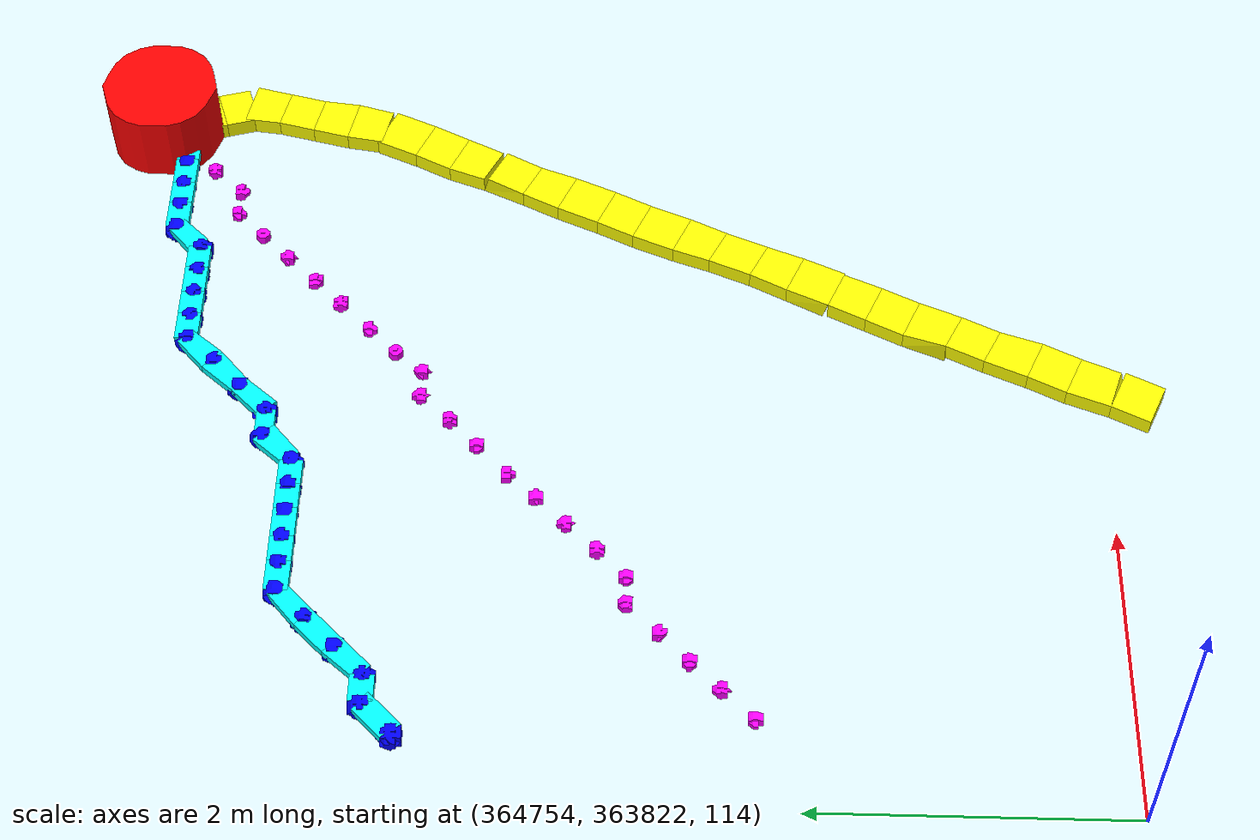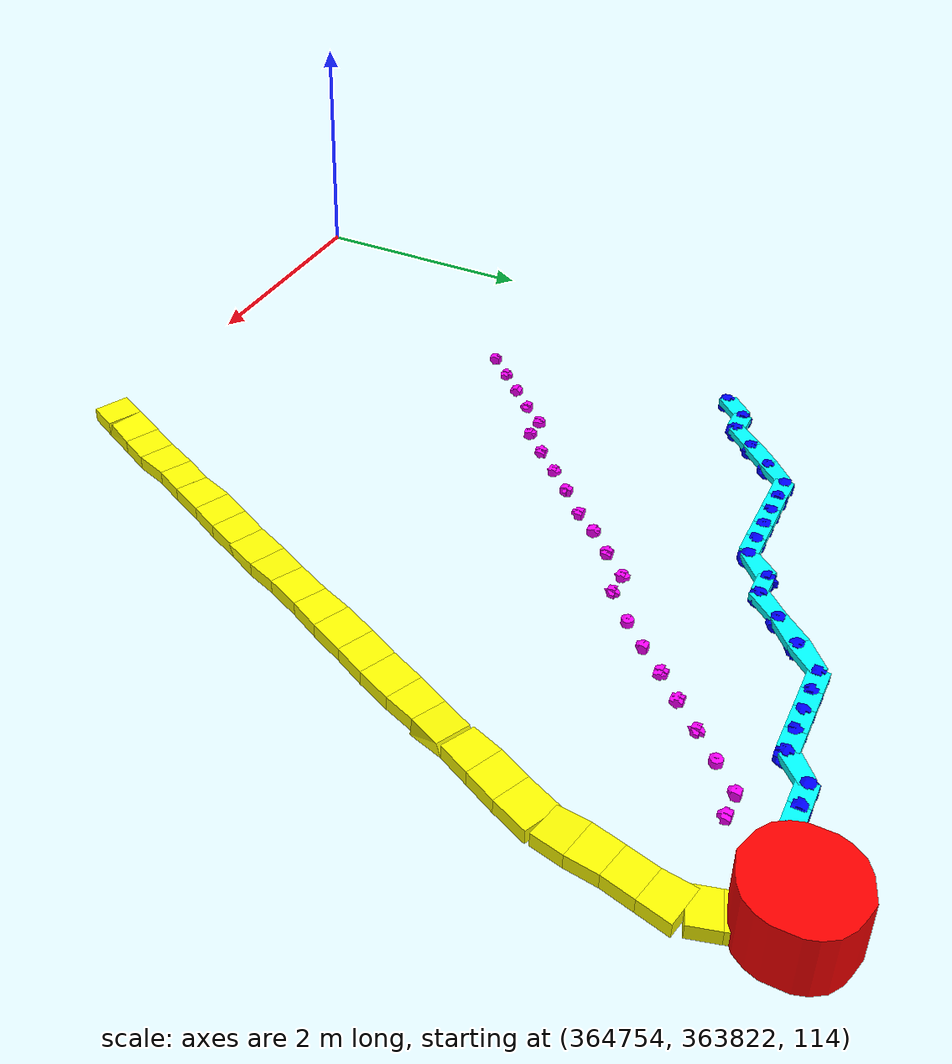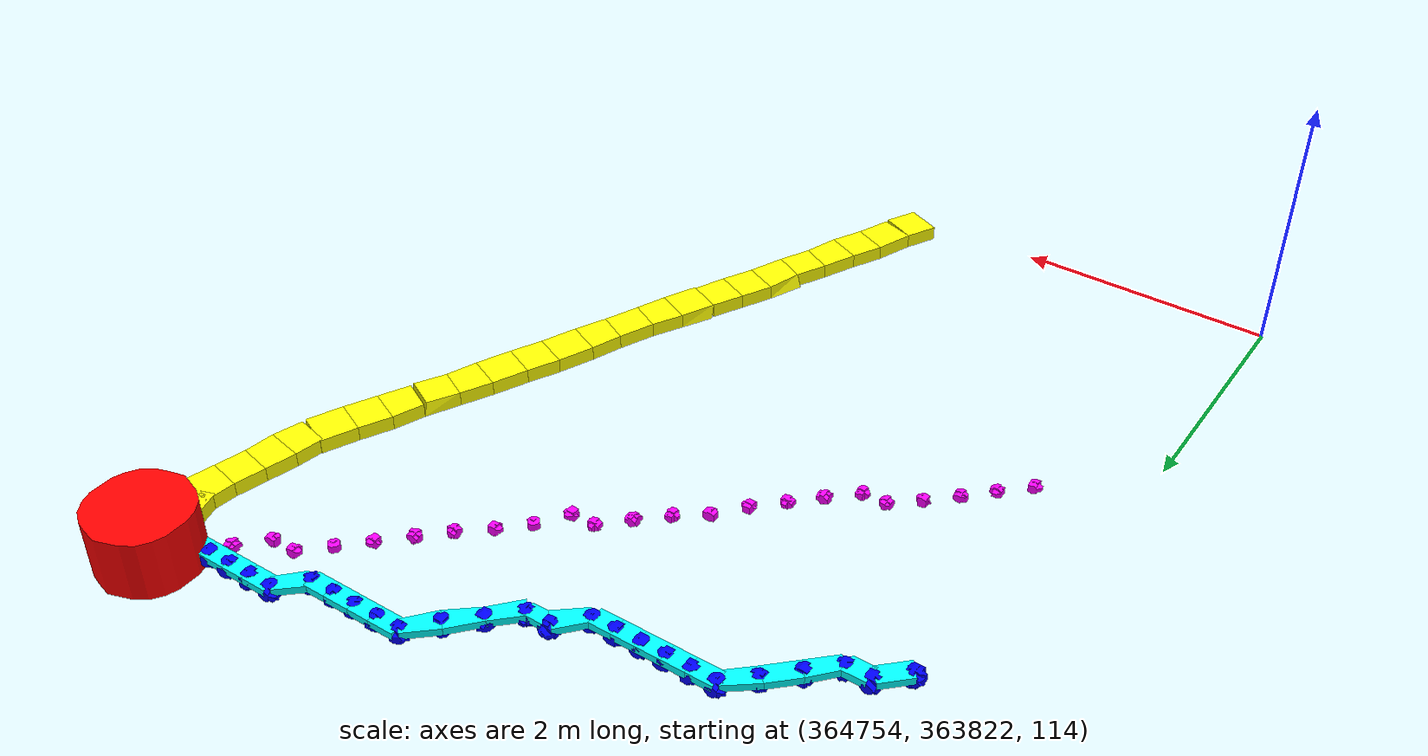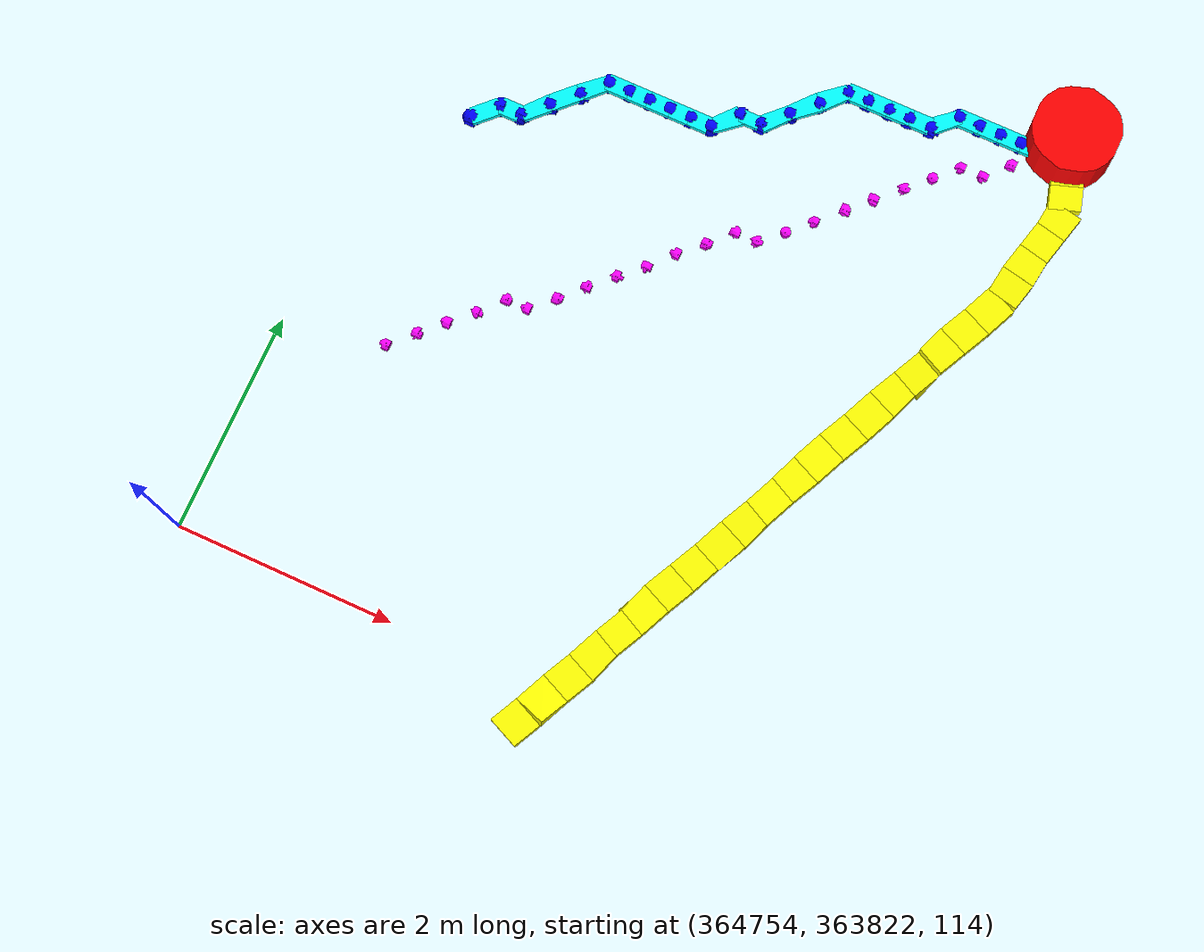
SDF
<sdf version="1.5">
 <world name="default">
  <include><uri>model://sun</uri></include>
  <model name="goal_marker">
   <static>true</static>
   <pose>364759.64 363828.44 113.82 0 0 0</pose>
   <link name="link">
    <visual name="visual">
     <geometry><cylinder><radius>0.4</radius><length>0.5</length></cylinder></geometry>
     <material><ambient>1 0 0 1</ambient><diffuse>1 0 0 1</diffuse><emissive>1 0 0 1</emissive></material>
    </visual>
   </link>
  </model>
  <model name="road_segment_407">
   <static>true</static>
   <pose>364757.3 363821.69200000004 113.65 0 -0.0 1.144168833717856</pose>
   <link name="link">
    <collision name="collision">
     <geometry><box><size>0.2899931033868107 0.3 0.12</size></box></geometry>
     <surface><friction><ode><mu>0.2</mu><mu2>0.2</mu2></ode></friction></surface>
    </collision>
    <visual name="visual">
     <geometry><box><size>0.2899931033868107 0.3 0.12</size></box></geometry>
     <material><ambient>1 1 0 1</ambient><diffuse>1 1 0 1</diffuse><emissive>1 1 0 1</emissive></material>
    </visual>
   </link>
  </model>
  <model name="road_segment_408">
   <static>true</static>
   <pose>364757.42000000004 363821.956 113.64 0 0.06885812168099147 1.1441688334520674</pose>
   <link name="link">
    <collision name="collision">
     <geometry><box><size>0.2906819567760433 0.3 0.12</size></box></geometry>
     <surface><friction><ode><mu>0.2</mu><mu2>0.2</mu2></ode></friction></surface>
    </collision>
    <visual name="visual">
     <geometry><box><size>0.2906819567760433 0.3 0.12</size></box></geometry>
     <material><ambient>1 1 0 1</ambient><diffuse>1 1 0 1</diffuse><emissive>1 1 0 1</emissive></material>
    </visual>
   </link>
  </model>
  <model name="road_segment_409">
   <static>true</static>
   <pose>364757.54000000004 363822.22 113.63000000000001 0 4.9004112681420174e-14 1.144168833717856</pose>
   <link name="link">
    <collision name="collision">
     <geometry><box><size>0.2899931033868107 0.3 0.12</size></box></geometry>
     <surface><friction><ode><mu>inf</mu><mu2>inf</mu2></ode></friction></surface>
    </collision>
    <visual name="visual">
     <geometry><box><size>0.2899931033868107 0.3 0.12</size></box></geometry>
     <material><ambient>1 1 0 1</ambient><diffuse>1 1 0 1</diffuse><emissive>1 1 0 1</emissive></material>
    </visual>
   </link>
  </model>
  <model name="road_segment_410">
   <static>true</static>
   <pose>364757.66000000003 363822.484 113.63 0 -0.0 1.144168833634797</pose>
   <link name="link">
    <collision name="collision">
     <geometry><box><size>0.2899931033338204 0.3 0.12</size></box></geometry>
     <surface><friction><ode><mu>0.2</mu><mu2>0.2</mu2></ode></friction></surface>
    </collision>
    <visual name="visual">
     <geometry><box><size>0.2899931033338204 0.3 0.12</size></box></geometry>
     <material><ambient>1 1 0 1</ambient><diffuse>1 1 0 1</diffuse><emissive>1 1 0 1</emissive></material>
    </visual>
   </link>
  </model>
  <model name="road_segment_411">
   <static>true</static>
   <pose>364757.78 363822.748 113.62900000008644 0 0.006896605798151629 1.144168833717856</pose>
   <link name="link">
    <collision name="collision">
     <geometry><box><size>0.2900000000193482 0.3 0.12</size></box></geometry>
     <surface><friction><ode><mu>0.2</mu><mu2>0.2</mu2></ode></friction></surface>
    </collision>
    <visual name="visual">
     <geometry><box><size>0.2900000000193482 0.3 0.12</size></box></geometry>
     <material><ambient>1 1 0 1</ambient><diffuse>1 1 0 1</diffuse><emissive>1 1 0 1</emissive></material>
    </visual>
   </link>
  </model>
  <model name="road_segment_412">
   <static>true</static>
   <pose>364757.9 363823.012 113.62400000008644 0 0.02757986855137552 1.144168833717856</pose>
   <link name="link">
    <collision name="collision">
     <geometry><box><size>0.2901034298567999 0.3 0.12</size></box></geometry>
     <surface><friction><ode><mu>0.2</mu><mu2>0.2</mu2></ode></friction></surface>
    </collision>
    <visual name="visual">
     <geometry><box><size>0.2901034298567999 0.3 0.12</size></box></geometry>
     <material><ambient>1 1 0 1</ambient><diffuse>1 1 0 1</diffuse><emissive>1 1 0 1</emissive></material>
    </visual>
   </link>
  </model>
  <model name="road_segment_413">
   <static>true</static>
   <pose>364758.02 363823.276 113.62000000000002 0 4.900411269037468e-14 1.144168833634797</pose>
   <link name="link">
    <collision name="collision">
     <geometry><box><size>0.2899931033338204 0.3 0.12</size></box></geometry>
     <surface><friction><ode><mu>0.2</mu><mu2>0.2</mu2></ode></friction></surface>
    </collision>
    <visual name="visual">
     <geometry><box><size>0.2899931033338204 0.3 0.12</size></box></geometry>
     <material><ambient>1 1 0 1</ambient><diffuse>1 1 0 1</diffuse><emissive>1 1 0 1</emissive></material>
    </visual>
   </link>
  </model>
  <model name="road_segment_414">
   <static>true</static>
   <pose>364758.14 363823.54000000004 113.62 0 -0.0 1.144168833717856</pose>
   <link name="link">
    <collision name="collision">
     <geometry><box><size>0.2899931033868107 0.3 0.12</size></box></geometry>
     <surface><friction><ode><mu>0.2</mu><mu2>0.2</mu2></ode></friction></surface>
    </collision>
    <visual name="visual">
     <geometry><box><size>0.2899931033868107 0.3 0.12</size></box></geometry>
     <material><ambient>1 1 0 1</ambient><diffuse>1 1 0 1</diffuse><emissive>1 1 0 1</emissive></material>
    </visual>
   </link>
  </model>
  <model name="road_segment_415">
   <static>true</static>
   <pose>364758.26 363823.804 113.6223999999116 0 -0.016550605803775344 1.144168833634797</pose>
   <link name="link">
    <collision name="collision">
     <geometry><box><size>0.29003282569302774 0.3 0.12</size></box></geometry>
     <surface><friction><ode><mu>0.2</mu><mu2>0.2</mu2></ode></friction></surface>
    </collision>
    <visual name="visual">
     <geometry><box><size>0.29003282569302774 0.3 0.12</size></box></geometry>
     <material><ambient>1 1 0 1</ambient><diffuse>1 1 0 1</diffuse><emissive>1 1 0 1</emissive></material>
    </visual>
   </link>
  </model>
  <model name="road_segment_416">
   <static>true</static>
   <pose>364758.38 363824.06799999997 113.62739999991159 0 -0.017929540020918164 1.144168833717856</pose>
   <link name="link">
    <collision name="collision">
     <geometry><box><size>0.2900397214413097 0.3 0.12</size></box></geometry>
     <surface><friction><ode><mu>0.2</mu><mu2>0.2</mu2></ode></friction></surface>
    </collision>
    <visual name="visual">
     <geometry><box><size>0.2900397214413097 0.3 0.12</size></box></geometry>
     <material><ambient>1 1 0 1</ambient><diffuse>1 1 0 1</diffuse><emissive>1 1 0 1</emissive></material>
    </visual>
   </link>
  </model>
  <model name="road_segment_417">
   <static>true</static>
   <pose>364758.5 363824.33200000005 113.62700000010652 0 0.02068719487613057 1.144168833717856</pose>
   <link name="link">
    <collision name="collision">
     <geometry><box><size>0.29005516718265323 0.3 0.12</size></box></geometry>
     <surface><friction><ode><mu>0.2</mu><mu2>0.2</mu2></ode></friction></surface>
    </collision>
    <visual name="visual">
     <geometry><box><size>0.29005516718265323 0.3 0.12</size></box></geometry>
     <material><ambient>1 1 0 1</ambient><diffuse>1 1 0 1</diffuse><emissive>1 1 0 1</emissive></material>
    </visual>
   </link>
  </model>
  <model name="road_segment_418">
   <static>true</static>
   <pose>364758.62 363824.596 113.62200000010652 0 0.013792557538907752 1.144168833634797</pose>
   <link name="link">
    <collision name="collision">
     <geometry><box><size>0.29002068888767946 0.3 0.12</size></box></geometry>
     <surface><friction><ode><mu>0.2</mu><mu2>0.2</mu2></ode></friction></surface>
    </collision>
    <visual name="visual">
     <geometry><box><size>0.29002068888767946 0.3 0.12</size></box></geometry>
     <material><ambient>1 1 0 1</ambient><diffuse>1 1 0 1</diffuse><emissive>1 1 0 1</emissive></material>
    </visual>
   </link>
  </model>
  <model name="road_segment_419">
   <static>true</static>
   <pose>364758.74 363824.86 113.61620000008894 0 0.02620152158962085 1.144168833717856</pose>
   <link name="link">
    <collision name="collision">
     <geometry><box><size>0.29009267486306806 0.3 0.12</size></box></geometry>
     <surface><friction><ode><mu>0.2</mu><mu2>0.2</mu2></ode></friction></surface>
    </collision>
    <visual name="visual">
     <geometry><box><size>0.29009267486306806 0.3 0.12</size></box></geometry>
     <material><ambient>1 1 0 1</ambient><diffuse>1 1 0 1</diffuse><emissive>1 1 0 1</emissive></material>
    </visual>
   </link>
  </model>
  <model name="road_segment_420">
   <static>true</static>
   <pose>364758.86 363825.124 113.61120000008894 0 0.008275870556283127 1.1441688334520674</pose>
   <link name="link">
    <collision name="collision">
     <geometry><box><size>0.29000303445999237 0.3 0.12</size></box></geometry>
     <surface><friction><ode><mu>0.2</mu><mu2>0.2</mu2></ode></friction></surface>
    </collision>
    <visual name="visual">
     <geometry><box><size>0.29000303445999237 0.3 0.12</size></box></geometry>
     <material><ambient>1 1 0 1</ambient><diffuse>1 1 0 1</diffuse><emissive>1 1 0 1</emissive></material>
    </visual>
   </link>
  </model>
  <model name="road_segment_421">
   <static>true</static>
   <pose>364758.98000000004 363825.38800000004 113.61 0 -0.0 1.144168833717856</pose>
   <link name="link">
    <collision name="collision">
     <geometry><box><size>0.2899931033868107 0.3 0.12</size></box></geometry>
     <surface><friction><ode><mu>0.2</mu><mu2>0.2</mu2></ode></friction></surface>
    </collision>
    <visual name="visual">
     <geometry><box><size>0.2899931033868107 0.3 0.12</size></box></geometry>
     <material><ambient>1 1 0 1</ambient><diffuse>1 1 0 1</diffuse><emissive>1 1 0 1</emissive></material>
    </visual>
   </link>
  </model>
  <model name="road_segment_422">
   <static>true</static>
   <pose>364759.10000000003 363825.652 113.61 0 -0.0 1.144168833717856</pose>
   <link name="link">
    <collision name="collision">
     <geometry><box><size>0.2899931033868107 0.3 0.12</size></box></geometry>
     <surface><friction><ode><mu>0.2</mu><mu2>0.2</mu2></ode></friction></surface>
    </collision>
    <visual name="visual">
     <geometry><box><size>0.2899931033868107 0.3 0.12</size></box></geometry>
     <material><ambient>1 1 0 1</ambient><diffuse>1 1 0 1</diffuse><emissive>1 1 0 1</emissive></material>
    </visual>
   </link>
  </model>
  <model name="road_segment_423">
   <static>true</static>
   <pose>364759.22000000003 363825.916 113.615 0 -0.03446992010047605 1.144168833634797</pose>
   <link name="link">
    <collision name="collision">
     <geometry><box><size>0.29016547000148024 0.3 0.12</size></box></geometry>
     <surface><friction><ode><mu>0.2</mu><mu2>0.2</mu2></ode></friction></surface>
    </collision>
    <visual name="visual">
     <geometry><box><size>0.29016547000148024 0.3 0.12</size></box></geometry>
     <material><ambient>1 1 0 1</ambient><diffuse>1 1 0 1</diffuse><emissive>1 1 0 1</emissive></material>
    </visual>
   </link>
  </model>
  <model name="road_segment_424">
   <static>true</static>
   <pose>364759.34 363826.18000000005 113.61999999999999 0 4.9004112681420174e-14 1.144168833717856</pose>
   <link name="link">
    <collision name="collision">
     <geometry><box><size>0.2899931033868107 0.3 0.12</size></box></geometry>
     <surface><friction><ode><mu>0.2</mu><mu2>0.2</mu2></ode></friction></surface>
    </collision>
    <visual name="visual">
     <geometry><box><size>0.2899931033868107 0.3 0.12</size></box></geometry>
     <material><ambient>1 1 0 1</ambient><diffuse>1 1 0 1</diffuse><emissive>1 1 0 1</emissive></material>
    </visual>
   </link>
  </model>
  <model name="road_segment_425">
   <static>true</static>
   <pose>364759.46 363826.444 113.61999999999999 0 -0.0 1.144168833634797</pose>
   <link name="link">
    <collision name="collision">
     <geometry><box><size>0.2899931033338204 0.3 0.12</size></box></geometry>
     <surface><friction><ode><mu>0.2</mu><mu2>0.2</mu2></ode></friction></surface>
    </collision>
    <visual name="visual">
     <geometry><box><size>0.2899931033338204 0.3 0.12</size></box></geometry>
     <material><ambient>1 1 0 1</ambient><diffuse>1 1 0 1</diffuse><emissive>1 1 0 1</emissive></material>
    </visual>
   </link>
  </model>
  <model name="road_segment_426">
   <static>true</static>
   <pose>364759.58 363826.708 113.61999999999999 0 -4.9004112681420174e-14 1.144168833717856</pose>
   <link name="link">
    <collision name="collision">
     <geometry><box><size>0.2899931033868107 0.3 0.12</size></box></geometry>
     <surface><friction><ode><mu>0.2</mu><mu2>0.2</mu2></ode></friction></surface>
    </collision>
    <visual name="visual">
     <geometry><box><size>0.2899931033868107 0.3 0.12</size></box></geometry>
     <material><ambient>1 1 0 1</ambient><diffuse>1 1 0 1</diffuse><emissive>1 1 0 1</emissive></material>
    </visual>
   </link>
  </model>
  <model name="road_segment_427">
   <static>true</static>
   <pose>364759.66500000004 363826.965 113.62500000000001 0 -0.03920313109943768 1.373400766989791</pose>
   <link name="link">
    <collision name="collision">
     <geometry><box><size>0.2551470164411803 0.3 0.12</size></box></geometry>
     <surface><friction><ode><mu>0.2</mu><mu2>0.2</mu2></ode></friction></surface>
    </collision>
    <visual name="visual">
     <geometry><box><size>0.2551470164411803 0.3 0.12</size></box></geometry>
     <material><ambient>1 1 0 1</ambient><diffuse>1 1 0 1</diffuse><emissive>1 1 0 1</emissive></material>
    </visual>
   </link>
  </model>
  <model name="road_segment_428">
   <static>true</static>
   <pose>364759.71499999997 363827.215 113.63000000000001 0 5.573955807561227e-14 1.373400766989791</pose>
   <link name="link">
    <collision name="collision">
     <geometry><box><size>0.25495097567735614 0.3 0.12</size></box></geometry>
     <surface><friction><ode><mu>0.2</mu><mu2>0.2</mu2></ode></friction></surface>
    </collision>
    <visual name="visual">
     <geometry><box><size>0.25495097567735614 0.3 0.12</size></box></geometry>
     <material><ambient>1 1 0 1</ambient><diffuse>1 1 0 1</diffuse><emissive>1 1 0 1</emissive></material>
    </visual>
   </link>
  </model>
  <model name="road_segment_429">
   <static>true</static>
   <pose>364759.765 363827.465 113.63 0 -0.0 1.3734007667659154</pose>
   <link name="link">
    <collision name="collision">
     <geometry><box><size>0.2549509756887716 0.3 0.12</size></box></geometry>
     <surface><friction><ode><mu>0.2</mu><mu2>0.2</mu2></ode></friction></surface>
    </collision>
    <visual name="visual">
     <geometry><box><size>0.2549509756887716 0.3 0.12</size></box></geometry>
     <material><ambient>1 1 0 1</ambient><diffuse>1 1 0 1</diffuse><emissive>1 1 0 1</emissive></material>
    </visual>
   </link>
  </model>
  <model name="road_segment_430">
   <static>true</static>
   <pose>364759.81500000006 363827.715 113.63 0 -0.0 1.373400766989791</pose>
   <link name="link">
    <collision name="collision">
     <geometry><box><size>0.25495097567735614 0.3 0.12</size></box></geometry>
     <surface><friction><ode><mu>0.2</mu><mu2>0.2</mu2></ode></friction></surface>
    </collision>
    <visual name="visual">
     <geometry><box><size>0.25495097567735614 0.3 0.12</size></box></geometry>
     <material><ambient>1 1 0 1</ambient><diffuse>1 1 0 1</diffuse><emissive>1 1 0 1</emissive></material>
    </visual>
   </link>
  </model>
  <model name="road_segment_431">
   <static>true</static>
   <pose>364759.8066666667 363827.94000000006 113.63 0 -0.0 1.8925468811042274</pose>
   <link name="link">
    <collision name="collision">
     <geometry><box><size>0.21081851068402757 0.3 0.12</size></box></geometry>
     <surface><friction><ode><mu>0.2</mu><mu2>0.2</mu2></ode></friction></surface>
    </collision>
    <visual name="visual">
     <geometry><box><size>0.21081851068402757 0.3 0.12</size></box></geometry>
     <material><ambient>1 1 0 1</ambient><diffuse>1 1 0 1</diffuse><emissive>1 1 0 1</emissive></material>
    </visual>
   </link>
  </model>
  <model name="road_segment_432">
   <static>true</static>
   <pose>364759.74 363828.14 113.63000000000001 0 -6.740800260648181e-14 1.8925468814534734</pose>
   <link name="link">
    <collision name="collision">
     <geometry><box><size>0.21081851064721382 0.3 0.12</size></box></geometry>
     <surface><friction><ode><mu>0.2</mu><mu2>0.2</mu2></ode></friction></surface>
    </collision>
    <visual name="visual">
     <geometry><box><size>0.21081851064721382 0.3 0.12</size></box></geometry>
     <material><ambient>1 1 0 1</ambient><diffuse>1 1 0 1</diffuse><emissive>1 1 0 1</emissive></material>
    </visual>
   </link>
  </model>
  <model name="road_segment_433">
   <static>true</static>
   <pose>364759.67333333334 363828.33999999997 113.63000000000001 0 6.740800259471083e-14 1.8925468811042274</pose>
   <link name="link">
    <collision name="collision">
     <geometry><box><size>0.21081851068402757 0.3 0.12</size></box></geometry>
     <surface><friction><ode><mu>0.2</mu><mu2>0.2</mu2></ode></friction></surface>
    </collision>
    <visual name="visual">
     <geometry><box><size>0.21081851068402757 0.3 0.12</size></box></geometry>
     <material><ambient>1 1 0 1</ambient><diffuse>1 1 0 1</diffuse><emissive>1 1 0 1</emissive></material>
    </visual>
   </link>
  </model>
  <model name="straight_marker_284">
   <static>true</static>
   <pose>364754.84 363824.24 113.61999999999999 0 0 0</pose>
   <link name="link">
    <visual name="visual">
     <geometry><sphere><radius>0.05</radius></sphere></geometry>
     <material><ambient>1 0 1 1</ambient><diffuse>1 0 1 1</diffuse><emissive>1 0 1 1</emissive></material>
    </visual>
   </link>
  </model>
  <model name="straight_marker_285">
   <static>true</static>
   <pose>364755.04 363824.44 113.61999999999999 0 0 0</pose>
   <link name="link">
    <visual name="visual">
     <geometry><sphere><radius>0.05</radius></sphere></geometry>
     <material><ambient>1 0 1 1</ambient><diffuse>1 0 1 1</diffuse><emissive>1 0 1 1</emissive></material>
    </visual>
   </link>
  </model>
  <model name="straight_marker_286">
   <static>true</static>
   <pose>364755.24 363824.64 113.61999999999999 0 0 0</pose>
   <link name="link">
    <visual name="visual">
     <geometry><sphere><radius>0.05</radius></sphere></geometry>
     <material><ambient>1 0 1 1</ambient><diffuse>1 0 1 1</diffuse><emissive>1 0 1 1</emissive></material>
    </visual>
   </link>
  </model>
  <model name="straight_marker_287">
   <static>true</static>
   <pose>364755.44 363824.84 113.61999999999999 0 0 0</pose>
   <link name="link">
    <visual name="visual">
     <geometry><sphere><radius>0.05</radius></sphere></geometry>
     <material><ambient>1 0 1 1</ambient><diffuse>1 0 1 1</diffuse><emissive>1 0 1 1</emissive></material>
    </visual>
   </link>
  </model>
  <model name="straight_marker_288">
   <static>true</static>
   <pose>364755.64 363825.04 113.63999999925495 0 0 0</pose>
   <link name="link">
    <visual name="visual">
     <geometry><sphere><radius>0.05</radius></sphere></geometry>
     <material><ambient>1 0 1 1</ambient><diffuse>1 0 1 1</diffuse><emissive>1 0 1 1</emissive></material>
    </visual>
   </link>
  </model>
  <model name="straight_marker_289">
   <static>true</static>
   <pose>364755.84 363825.04 113.63999999945868 0 0 0</pose>
   <link name="link">
    <visual name="visual">
     <geometry><sphere><radius>0.05</radius></sphere></geometry>
     <material><ambient>1 0 1 1</ambient><diffuse>1 0 1 1</diffuse><emissive>1 0 1 1</emissive></material>
    </visual>
   </link>
  </model>
  <model name="straight_marker_290">
   <static>true</static>
   <pose>364756.04 363825.24 113.64 0 0 0</pose>
   <link name="link">
    <visual name="visual">
     <geometry><sphere><radius>0.05</radius></sphere></geometry>
     <material><ambient>1 0 1 1</ambient><diffuse>1 0 1 1</diffuse><emissive>1 0 1 1</emissive></material>
    </visual>
   </link>
  </model>
  <model name="straight_marker_291">
   <static>true</static>
   <pose>364756.24 363825.44 113.64 0 0 0</pose>
   <link name="link">
    <visual name="visual">
     <geometry><sphere><radius>0.05</radius></sphere></geometry>
     <material><ambient>1 0 1 1</ambient><diffuse>1 0 1 1</diffuse><emissive>1 0 1 1</emissive></material>
    </visual>
   </link>
  </model>
  <model name="straight_marker_292">
   <static>true</static>
   <pose>364756.44 363825.64 113.64 0 0 0</pose>
   <link name="link">
    <visual name="visual">
     <geometry><sphere><radius>0.05</radius></sphere></geometry>
     <material><ambient>1 0 1 1</ambient><diffuse>1 0 1 1</diffuse><emissive>1 0 1 1</emissive></material>
    </visual>
   </link>
  </model>
  <model name="straight_marker_293">
   <static>true</static>
   <pose>364756.64 363825.84 113.6100000006199 0 0 0</pose>
   <link name="link">
    <visual name="visual">
     <geometry><sphere><radius>0.05</radius></sphere></geometry>
     <material><ambient>1 0 1 1</ambient><diffuse>1 0 1 1</diffuse><emissive>1 0 1 1</emissive></material>
    </visual>
   </link>
  </model>
  <model name="straight_marker_294">
   <static>true</static>
   <pose>364756.84 363826.04 113.64999999926657 0 0 0</pose>
   <link name="link">
    <visual name="visual">
     <geometry><sphere><radius>0.05</radius></sphere></geometry>
     <material><ambient>1 0 1 1</ambient><diffuse>1 0 1 1</diffuse><emissive>1 0 1 1</emissive></material>
    </visual>
   </link>
  </model>
  <model name="straight_marker_295">
   <static>true</static>
   <pose>364757.04 363826.24 113.64999999999999 0 0 0</pose>
   <link name="link">
    <visual name="visual">
     <geometry><sphere><radius>0.05</radius></sphere></geometry>
     <material><ambient>1 0 1 1</ambient><diffuse>1 0 1 1</diffuse><emissive>1 0 1 1</emissive></material>
    </visual>
   </link>
  </model>
  <model name="straight_marker_296">
   <static>true</static>
   <pose>364757.24 363826.44 113.64999999999999 0 0 0</pose>
   <link name="link">
    <visual name="visual">
     <geometry><sphere><radius>0.05</radius></sphere></geometry>
     <material><ambient>1 0 1 1</ambient><diffuse>1 0 1 1</diffuse><emissive>1 0 1 1</emissive></material>
    </visual>
   </link>
  </model>
  <model name="straight_marker_297">
   <static>true</static>
   <pose>364757.44 363826.44 113.64999999999999 0 0 0</pose>
   <link name="link">
    <visual name="visual">
     <geometry><sphere><radius>0.05</radius></sphere></geometry>
     <material><ambient>1 0 1 1</ambient><diffuse>1 0 1 1</diffuse><emissive>1 0 1 1</emissive></material>
    </visual>
   </link>
  </model>
  <model name="straight_marker_298">
   <static>true</static>
   <pose>364757.64 363826.64 113.60000000104773 0 0 0</pose>
   <link name="link">
    <visual name="visual">
     <geometry><sphere><radius>0.05</radius></sphere></geometry>
     <material><ambient>1 0 1 1</ambient><diffuse>1 0 1 1</diffuse><emissive>1 0 1 1</emissive></material>
    </visual>
   </link>
  </model>
  <model name="straight_marker_299">
   <static>true</static>
   <pose>364757.84 363826.84 113.6 0 0 0</pose>
   <link name="link">
    <visual name="visual">
     <geometry><sphere><radius>0.05</radius></sphere></geometry>
     <material><ambient>1 0 1 1</ambient><diffuse>1 0 1 1</diffuse><emissive>1 0 1 1</emissive></material>
    </visual>
   </link>
  </model>
  <model name="straight_marker_300">
   <static>true</static>
   <pose>364758.04 363827.04 113.61999999962747 0 0 0</pose>
   <link name="link">
    <visual name="visual">
     <geometry><sphere><radius>0.05</radius></sphere></geometry>
     <material><ambient>1 0 1 1</ambient><diffuse>1 0 1 1</diffuse><emissive>1 0 1 1</emissive></material>
    </visual>
   </link>
  </model>
  <model name="straight_marker_301">
   <static>true</static>
   <pose>364758.24 363827.24 113.61999999999999 0 0 0</pose>
   <link name="link">
    <visual name="visual">
     <geometry><sphere><radius>0.05</radius></sphere></geometry>
     <material><ambient>1 0 1 1</ambient><diffuse>1 0 1 1</diffuse><emissive>1 0 1 1</emissive></material>
    </visual>
   </link>
  </model>
  <model name="straight_marker_302">
   <static>true</static>
   <pose>364758.44 363827.44 113.61999999999999 0 0 0</pose>
   <link name="link">
    <visual name="visual">
     <geometry><sphere><radius>0.05</radius></sphere></geometry>
     <material><ambient>1 0 1 1</ambient><diffuse>1 0 1 1</diffuse><emissive>1 0 1 1</emissive></material>
    </visual>
   </link>
  </model>
  <model name="straight_marker_303">
   <static>true</static>
   <pose>364758.64 363827.64 113.61999999999999 0 0 0</pose>
   <link name="link">
    <visual name="visual">
     <geometry><sphere><radius>0.05</radius></sphere></geometry>
     <material><ambient>1 0 1 1</ambient><diffuse>1 0 1 1</diffuse><emissive>1 0 1 1</emissive></material>
    </visual>
   </link>
  </model>
  <model name="straight_marker_304">
   <static>true</static>
   <pose>364758.84 363827.84 113.61999999999999 0 0 0</pose>
   <link name="link">
    <visual name="visual">
     <geometry><sphere><radius>0.05</radius></sphere></geometry>
     <material><ambient>1 0 1 1</ambient><diffuse>1 0 1 1</diffuse><emissive>1 0 1 1</emissive></material>
    </visual>
   </link>
  </model>
  <model name="straight_marker_305">
   <static>true</static>
   <pose>364759.04 363827.84 113.61999999999999 0 0 0</pose>
   <link name="link">
    <visual name="visual">
     <geometry><sphere><radius>0.05</radius></sphere></geometry>
     <material><ambient>1 0 1 1</ambient><diffuse>1 0 1 1</diffuse><emissive>1 0 1 1</emissive></material>
    </visual>
   </link>
  </model>
  <model name="straight_marker_306">
   <static>true</static>
   <pose>364759.24 363828.04 113.61999999999999 0 0 0</pose>
   <link name="link">
    <visual name="visual">
     <geometry><sphere><radius>0.05</radius></sphere></geometry>
     <material><ambient>1 0 1 1</ambient><diffuse>1 0 1 1</diffuse><emissive>1 0 1 1</emissive></material>
    </visual>
   </link>
  </model>
  <model name="straight_marker_307">
   <static>true</static>
   <pose>364759.44 363828.24 113.61999999999999 0 0 0</pose>
   <link name="link">
    <visual name="visual">
     <geometry><sphere><radius>0.05</radius></sphere></geometry>
     <material><ambient>1 0 1 1</ambient><diffuse>1 0 1 1</diffuse><emissive>1 0 1 1</emissive></material>
    </visual>
   </link>
  </model>
  <model name="straight_marker_308">
   <static>true</static>
   <pose>364759.64 363828.44 113.61999999999999 0 0 0</pose>
   <link name="link">
    <visual name="visual">
     <geometry><sphere><radius>0.05</radius></sphere></geometry>
     <material><ambient>1 0 1 1</ambient><diffuse>1 0 1 1</diffuse><emissive>1 0 1 1</emissive></material>
    </visual>
   </link>
  </model>
  <model name="normal_astar_segment_354">
   <static>true</static>
   <pose>364754.74 363826.54000000004 113.70999999989958 0 -7.100334919944821e-10 0.7853981633974483</pose>
   <link name="link">
    <visual name="visual">
     <geometry><box><size>0.2828427124910826 0.15 0.06</size></box></geometry>
     <material><ambient>0 1 1 1</ambient><diffuse>0 1 1 1</diffuse><emissive>0 1 1 1</emissive></material>
    </visual>
   </link>
  </model>
  <model name="normal_astar_segment_355">
   <static>true</static>
   <pose>364754.94 363826.64 113.71 0 -0.0 0.0</pose>
   <link name="link">
    <visual name="visual">
     <geometry><box><size>0.19999999995343387 0.15 0.06</size></box></geometry>
     <material><ambient>0 1 1 1</ambient><diffuse>0 1 1 1</diffuse><emissive>0 1 1 1</emissive></material>
    </visual>
   </link>
  </model>
  <model name="normal_astar_segment_356">
   <static>true</static>
   <pose>364755.14 363826.74 113.71 0 -0.0 0.7853981633974483</pose>
   <link name="link">
    <visual name="visual">
     <geometry><box><size>0.2828427124910826 0.15 0.06</size></box></geometry>
     <material><ambient>0 1 1 1</ambient><diffuse>0 1 1 1</diffuse><emissive>0 1 1 1</emissive></material>
    </visual>
   </link>
  </model>
  <model name="normal_astar_segment_357">
   <static>true</static>
   <pose>364755.33999999997 363826.94 113.71 0 -0.0 0.7853981632519291</pose>
   <link name="link">
    <visual name="visual">
     <geometry><box><size>0.2828427124499236 0.15 0.06</size></box></geometry>
     <material><ambient>0 1 1 1</ambient><diffuse>0 1 1 1</diffuse><emissive>0 1 1 1</emissive></material>
    </visual>
   </link>
  </model>
  <model name="normal_astar_segment_358">
   <static>true</static>
   <pose>364755.54000000004 363827.14 113.71499999989813 0 -0.03534061798531978 0.7853981633974483</pose>
   <link name="link">
    <visual name="visual">
     <geometry><box><size>0.2830194339709533 0.15 0.06</size></box></geometry>
     <material><ambient>0 1 1 1</ambient><diffuse>0 1 1 1</diffuse><emissive>0 1 1 1</emissive></material>
    </visual>
   </link>
  </model>
  <model name="normal_astar_segment_359">
   <static>true</static>
   <pose>364755.74 363827.24 113.71999999989814 0 -1.0186340659263873e-09 0.0</pose>
   <link name="link">
    <visual name="visual">
     <geometry><box><size>0.20000000001164153 0.15 0.06</size></box></geometry>
     <material><ambient>0 1 1 1</ambient><diffuse>0 1 1 1</diffuse><emissive>0 1 1 1</emissive></material>
    </visual>
   </link>
  </model>
  <model name="normal_astar_segment_360">
   <static>true</static>
   <pose>364755.94 363827.24 113.72 0 -0.0 0.0</pose>
   <link name="link">
    <visual name="visual">
     <geometry><box><size>0.19999999995343387 0.15 0.06</size></box></geometry>
     <material><ambient>0 1 1 1</ambient><diffuse>0 1 1 1</diffuse><emissive>0 1 1 1</emissive></material>
    </visual>
   </link>
  </model>
  <model name="normal_astar_segment_361">
   <static>true</static>
   <pose>364756.14 363827.24 113.72 0 -0.0 0.0</pose>
   <link name="link">
    <visual name="visual">
     <geometry><box><size>0.20000000001164153 0.15 0.06</size></box></geometry>
     <material><ambient>0 1 1 1</ambient><diffuse>0 1 1 1</diffuse><emissive>0 1 1 1</emissive></material>
    </visual>
   </link>
  </model>
  <model name="normal_astar_segment_362">
   <static>true</static>
   <pose>364756.33999999997 363827.24 113.72 0 -0.0 0.0</pose>
   <link name="link">
    <visual name="visual">
     <geometry><box><size>0.20000000001164153 0.15 0.06</size></box></geometry>
     <material><ambient>0 1 1 1</ambient><diffuse>0 1 1 1</diffuse><emissive>0 1 1 1</emissive></material>
    </visual>
   </link>
  </model>
  <model name="normal_astar_segment_363">
   <static>true</static>
   <pose>364756.54000000004 363827.24 113.72 0 -0.0 0.0</pose>
   <link name="link">
    <visual name="visual">
     <geometry><box><size>0.20000000001164153 0.15 0.06</size></box></geometry>
     <material><ambient>0 1 1 1</ambient><diffuse>0 1 1 1</diffuse><emissive>0 1 1 1</emissive></material>
    </visual>
   </link>
  </model>
  <model name="normal_astar_segment_364">
   <static>true</static>
   <pose>364756.74 363827.33999999997 113.72 0 -0.0 0.7853981633974483</pose>
   <link name="link">
    <visual name="visual">
     <geometry><box><size>0.2828427124910826 0.15 0.06</size></box></geometry>
     <material><ambient>0 1 1 1</ambient><diffuse>0 1 1 1</diffuse><emissive>0 1 1 1</emissive></material>
    </visual>
   </link>
  </model>
  <model name="normal_astar_segment_365">
   <static>true</static>
   <pose>364756.94 363827.44 113.72 0 -0.0 0.0</pose>
   <link name="link">
    <visual name="visual">
     <geometry><box><size>0.19999999995343387 0.15 0.06</size></box></geometry>
     <material><ambient>0 1 1 1</ambient><diffuse>0 1 1 1</diffuse><emissive>0 1 1 1</emissive></material>
    </visual>
   </link>
  </model>
  <model name="normal_astar_segment_366">
   <static>true</static>
   <pose>364757.14 363827.54000000004 113.72 0 -0.0 0.7853981633974483</pose>
   <link name="link">
    <visual name="visual">
     <geometry><box><size>0.2828427124910826 0.15 0.06</size></box></geometry>
     <material><ambient>0 1 1 1</ambient><diffuse>0 1 1 1</diffuse><emissive>0 1 1 1</emissive></material>
    </visual>
   </link>
  </model>
  <model name="normal_astar_segment_367">
   <static>true</static>
   <pose>364757.33999999997 363827.74 113.72 0 -0.0 0.7853981633974483</pose>
   <link name="link">
    <visual name="visual">
     <geometry><box><size>0.2828427124910826 0.15 0.06</size></box></geometry>
     <material><ambient>0 1 1 1</ambient><diffuse>0 1 1 1</diffuse><emissive>0 1 1 1</emissive></material>
    </visual>
   </link>
  </model>
  <model name="normal_astar_segment_368">
   <static>true</static>
   <pose>364757.54000000004 363827.94 113.7149999999054 0 0.035340619377841324 0.7853981632519291</pose>
   <link name="link">
    <visual name="visual">
     <geometry><box><size>0.2830194339437025 0.15 0.06</size></box></geometry>
     <material><ambient>0 1 1 1</ambient><diffuse>0 1 1 1</diffuse><emissive>0 1 1 1</emissive></material>
    </visual>
   </link>
  </model>
  <model name="normal_astar_segment_369">
   <static>true</static>
   <pose>364757.74 363828.04 113.70999999981082 0 -0.0 0.0</pose>
   <link name="link">
    <visual name="visual">
     <geometry><box><size>0.20000000001164153 0.15 0.06</size></box></geometry>
     <material><ambient>0 1 1 1</ambient><diffuse>0 1 1 1</diffuse><emissive>0 1 1 1</emissive></material>
    </visual>
   </link>
  </model>
  <model name="normal_astar_segment_370">
   <static>true</static>
   <pose>364757.94 363828.04 113.70999999981082 0 -0.0 0.0</pose>
   <link name="link">
    <visual name="visual">
     <geometry><box><size>0.19999999995343387 0.15 0.06</size></box></geometry>
     <material><ambient>0 1 1 1</ambient><diffuse>0 1 1 1</diffuse><emissive>0 1 1 1</emissive></material>
    </visual>
   </link>
  </model>
  <model name="normal_astar_segment_371">
   <static>true</static>
   <pose>364758.14 363828.04 113.70999999981082 0 -0.0 0.0</pose>
   <link name="link">
    <visual name="visual">
     <geometry><box><size>0.20000000001164153 0.15 0.06</size></box></geometry>
     <material><ambient>0 1 1 1</ambient><diffuse>0 1 1 1</diffuse><emissive>0 1 1 1</emissive></material>
    </visual>
   </link>
  </model>
  <model name="normal_astar_segment_372">
   <static>true</static>
   <pose>364758.33999999997 363828.04 113.70999999981082 0 -0.0 0.0</pose>
   <link name="link">
    <visual name="visual">
     <geometry><box><size>0.20000000001164153 0.15 0.06</size></box></geometry>
     <material><ambient>0 1 1 1</ambient><diffuse>0 1 1 1</diffuse><emissive>0 1 1 1</emissive></material>
    </visual>
   </link>
  </model>
  <model name="normal_astar_segment_373">
   <static>true</static>
   <pose>364758.54000000004 363828.14 113.70500000001162 0 0.03534061728650985 0.7853981633974483</pose>
   <link name="link">
    <visual name="visual">
     <geometry><box><size>0.28301943396396084 0.15 0.06</size></box></geometry>
     <material><ambient>0 1 1 1</ambient><diffuse>0 1 1 1</diffuse><emissive>0 1 1 1</emissive></material>
    </visual>
   </link>
  </model>
  <model name="normal_astar_segment_374">
   <static>true</static>
   <pose>364758.74 363828.24 113.70000000010621 0 1.062261389899518e-09 0.0</pose>
   <link name="link">
    <visual name="visual">
     <geometry><box><size>0.20000000001164153 0.15 0.06</size></box></geometry>
     <material><ambient>0 1 1 1</ambient><diffuse>0 1 1 1</diffuse><emissive>0 1 1 1</emissive></material>
    </visual>
   </link>
  </model>
  <model name="normal_astar_segment_375">
   <static>true</static>
   <pose>364758.94 363828.24 113.69999999999999 0 -0.0 0.0</pose>
   <link name="link">
    <visual name="visual">
     <geometry><box><size>0.19999999995343387 0.15 0.06</size></box></geometry>
     <material><ambient>0 1 1 1</ambient><diffuse>0 1 1 1</diffuse><emissive>0 1 1 1</emissive></material>
    </visual>
   </link>
  </model>
  <model name="normal_astar_segment_376">
   <static>true</static>
   <pose>364759.14 363828.24 113.69999999999999 0 -0.0 0.0</pose>
   <link name="link">
    <visual name="visual">
     <geometry><box><size>0.20000000001164153 0.15 0.06</size></box></geometry>
     <material><ambient>0 1 1 1</ambient><diffuse>0 1 1 1</diffuse><emissive>0 1 1 1</emissive></material>
    </visual>
   </link>
  </model>
  <model name="normal_astar_segment_377">
   <static>true</static>
   <pose>364759.33999999997 363828.24 113.69999999999999 0 -0.0 0.0</pose>
   <link name="link">
    <visual name="visual">
     <geometry><box><size>0.20000000001164153 0.15 0.06</size></box></geometry>
     <material><ambient>0 1 1 1</ambient><diffuse>0 1 1 1</diffuse><emissive>0 1 1 1</emissive></material>
    </visual>
   </link>
  </model>
  <model name="normal_astar_segment_378">
   <static>true</static>
   <pose>364759.54000000004 363828.33999999997 113.69999999999999 0 -0.0 0.7853981633974483</pose>
   <link name="link">
    <visual name="visual">
     <geometry><box><size>0.2828427124910826 0.15 0.06</size></box></geometry>
     <material><ambient>0 1 1 1</ambient><diffuse>0 1 1 1</diffuse><emissive>0 1 1 1</emissive></material>
    </visual>
   </link>
  </model>
  <model name="dijkstra_marker_243">
   <static>true</static>
   <pose>364754.64 363826.44 113.67999999979918 0 0 0</pose>
   <link name="link">
    <visual name="visual">
     <geometry><sphere><radius>0.08</radius></sphere></geometry>
     <material><ambient>0 0 1 1</ambient><diffuse>0 0 1 1</diffuse><emissive>0 0 1 1</emissive></material>
    </visual>
   </link>
  </model>
  <model name="dijkstra_marker_244">
   <static>true</static>
   <pose>364754.84 363826.64 113.68 0 0 0</pose>
   <link name="link">
    <visual name="visual">
     <geometry><sphere><radius>0.08</radius></sphere></geometry>
     <material><ambient>0 0 1 1</ambient><diffuse>0 0 1 1</diffuse><emissive>0 0 1 1</emissive></material>
    </visual>
   </link>
  </model>
  <model name="dijkstra_marker_245">
   <static>true</static>
   <pose>364755.04 363826.64 113.68 0 0 0</pose>
   <link name="link">
    <visual name="visual">
     <geometry><sphere><radius>0.08</radius></sphere></geometry>
     <material><ambient>0 0 1 1</ambient><diffuse>0 0 1 1</diffuse><emissive>0 0 1 1</emissive></material>
    </visual>
   </link>
  </model>
  <model name="dijkstra_marker_246">
   <static>true</static>
   <pose>364755.24 363826.84 113.68 0 0 0</pose>
   <link name="link">
    <visual name="visual">
     <geometry><sphere><radius>0.08</radius></sphere></geometry>
     <material><ambient>0 0 1 1</ambient><diffuse>0 0 1 1</diffuse><emissive>0 0 1 1</emissive></material>
    </visual>
   </link>
  </model>
  <model name="dijkstra_marker_247">
   <static>true</static>
   <pose>364755.44 363827.04 113.68 0 0 0</pose>
   <link name="link">
    <visual name="visual">
     <geometry><sphere><radius>0.08</radius></sphere></geometry>
     <material><ambient>0 0 1 1</ambient><diffuse>0 0 1 1</diffuse><emissive>0 0 1 1</emissive></material>
    </visual>
   </link>
  </model>
  <model name="dijkstra_marker_248">
   <static>true</static>
   <pose>364755.64 363827.24 113.68999999979629 0 0 0</pose>
   <link name="link">
    <visual name="visual">
     <geometry><sphere><radius>0.08</radius></sphere></geometry>
     <material><ambient>0 0 1 1</ambient><diffuse>0 0 1 1</diffuse><emissive>0 0 1 1</emissive></material>
    </visual>
   </link>
  </model>
  <model name="dijkstra_marker_249">
   <static>true</static>
   <pose>364755.84 363827.24 113.69000000000001 0 0 0</pose>
   <link name="link">
    <visual name="visual">
     <geometry><sphere><radius>0.08</radius></sphere></geometry>
     <material><ambient>0 0 1 1</ambient><diffuse>0 0 1 1</diffuse><emissive>0 0 1 1</emissive></material>
    </visual>
   </link>
  </model>
  <model name="dijkstra_marker_250">
   <static>true</static>
   <pose>364756.04 363827.24 113.69000000000001 0 0 0</pose>
   <link name="link">
    <visual name="visual">
     <geometry><sphere><radius>0.08</radius></sphere></geometry>
     <material><ambient>0 0 1 1</ambient><diffuse>0 0 1 1</diffuse><emissive>0 0 1 1</emissive></material>
    </visual>
   </link>
  </model>
  <model name="dijkstra_marker_251">
   <static>true</static>
   <pose>364756.24 363827.24 113.69000000000001 0 0 0</pose>
   <link name="link">
    <visual name="visual">
     <geometry><sphere><radius>0.08</radius></sphere></geometry>
     <material><ambient>0 0 1 1</ambient><diffuse>0 0 1 1</diffuse><emissive>0 0 1 1</emissive></material>
    </visual>
   </link>
  </model>
  <model name="dijkstra_marker_252">
   <static>true</static>
   <pose>364756.44 363827.24 113.69000000000001 0 0 0</pose>
   <link name="link">
    <visual name="visual">
     <geometry><sphere><radius>0.08</radius></sphere></geometry>
     <material><ambient>0 0 1 1</ambient><diffuse>0 0 1 1</diffuse><emissive>0 0 1 1</emissive></material>
    </visual>
   </link>
  </model>
  <model name="dijkstra_marker_253">
   <static>true</static>
   <pose>364756.64 363827.24 113.69000000000001 0 0 0</pose>
   <link name="link">
    <visual name="visual">
     <geometry><sphere><radius>0.08</radius></sphere></geometry>
     <material><ambient>0 0 1 1</ambient><diffuse>0 0 1 1</diffuse><emissive>0 0 1 1</emissive></material>
    </visual>
   </link>
  </model>
  <model name="dijkstra_marker_254">
   <static>true</static>
   <pose>364756.84 363827.44 113.69000000000001 0 0 0</pose>
   <link name="link">
    <visual name="visual">
     <geometry><sphere><radius>0.08</radius></sphere></geometry>
     <material><ambient>0 0 1 1</ambient><diffuse>0 0 1 1</diffuse><emissive>0 0 1 1</emissive></material>
    </visual>
   </link>
  </model>
  <model name="dijkstra_marker_255">
   <static>true</static>
   <pose>364757.04 363827.44 113.69000000000001 0 0 0</pose>
   <link name="link">
    <visual name="visual">
     <geometry><sphere><radius>0.08</radius></sphere></geometry>
     <material><ambient>0 0 1 1</ambient><diffuse>0 0 1 1</diffuse><emissive>0 0 1 1</emissive></material>
    </visual>
   </link>
  </model>
  <model name="dijkstra_marker_256">
   <static>true</static>
   <pose>364757.24 363827.64 113.69000000000001 0 0 0</pose>
   <link name="link">
    <visual name="visual">
     <geometry><sphere><radius>0.08</radius></sphere></geometry>
     <material><ambient>0 0 1 1</ambient><diffuse>0 0 1 1</diffuse><emissive>0 0 1 1</emissive></material>
    </visual>
   </link>
  </model>
  <model name="dijkstra_marker_257">
   <static>true</static>
   <pose>364757.44 363827.84 113.69000000000001 0 0 0</pose>
   <link name="link">
    <visual name="visual">
     <geometry><sphere><radius>0.08</radius></sphere></geometry>
     <material><ambient>0 0 1 1</ambient><diffuse>0 0 1 1</diffuse><emissive>0 0 1 1</emissive></material>
    </visual>
   </link>
  </model>
  <model name="dijkstra_marker_258">
   <static>true</static>
   <pose>364757.64 363828.04 113.67999999981083 0 0 0</pose>
   <link name="link">
    <visual name="visual">
     <geometry><sphere><radius>0.08</radius></sphere></geometry>
     <material><ambient>0 0 1 1</ambient><diffuse>0 0 1 1</diffuse><emissive>0 0 1 1</emissive></material>
    </visual>
   </link>
  </model>
  <model name="dijkstra_marker_259">
   <static>true</static>
   <pose>364757.84 363828.04 113.67999999981083 0 0 0</pose>
   <link name="link">
    <visual name="visual">
     <geometry><sphere><radius>0.08</radius></sphere></geometry>
     <material><ambient>0 0 1 1</ambient><diffuse>0 0 1 1</diffuse><emissive>0 0 1 1</emissive></material>
    </visual>
   </link>
  </model>
  <model name="dijkstra_marker_260">
   <static>true</static>
   <pose>364758.04 363828.04 113.67999999981083 0 0 0</pose>
   <link name="link">
    <visual name="visual">
     <geometry><sphere><radius>0.08</radius></sphere></geometry>
     <material><ambient>0 0 1 1</ambient><diffuse>0 0 1 1</diffuse><emissive>0 0 1 1</emissive></material>
    </visual>
   </link>
  </model>
  <model name="dijkstra_marker_261">
   <static>true</static>
   <pose>364758.24 363828.04 113.67999999981083 0 0 0</pose>
   <link name="link">
    <visual name="visual">
     <geometry><sphere><radius>0.08</radius></sphere></geometry>
     <material><ambient>0 0 1 1</ambient><diffuse>0 0 1 1</diffuse><emissive>0 0 1 1</emissive></material>
    </visual>
   </link>
  </model>
  <model name="dijkstra_marker_262">
   <static>true</static>
   <pose>364758.44 363828.04 113.67999999981083 0 0 0</pose>
   <link name="link">
    <visual name="visual">
     <geometry><sphere><radius>0.08</radius></sphere></geometry>
     <material><ambient>0 0 1 1</ambient><diffuse>0 0 1 1</diffuse><emissive>0 0 1 1</emissive></material>
    </visual>
   </link>
  </model>
  <model name="dijkstra_marker_263">
   <static>true</static>
   <pose>364758.64 363828.24 113.67000000021245 0 0 0</pose>
   <link name="link">
    <visual name="visual">
     <geometry><sphere><radius>0.08</radius></sphere></geometry>
     <material><ambient>0 0 1 1</ambient><diffuse>0 0 1 1</diffuse><emissive>0 0 1 1</emissive></material>
    </visual>
   </link>
  </model>
  <model name="dijkstra_marker_264">
   <static>true</static>
   <pose>364758.84 363828.24 113.67 0 0 0</pose>
   <link name="link">
    <visual name="visual">
     <geometry><sphere><radius>0.08</radius></sphere></geometry>
     <material><ambient>0 0 1 1</ambient><diffuse>0 0 1 1</diffuse><emissive>0 0 1 1</emissive></material>
    </visual>
   </link>
  </model>
  <model name="dijkstra_marker_265">
   <static>true</static>
   <pose>364759.04 363828.24 113.67 0 0 0</pose>
   <link name="link">
    <visual name="visual">
     <geometry><sphere><radius>0.08</radius></sphere></geometry>
     <material><ambient>0 0 1 1</ambient><diffuse>0 0 1 1</diffuse><emissive>0 0 1 1</emissive></material>
    </visual>
   </link>
  </model>
  <model name="dijkstra_marker_266">
   <static>true</static>
   <pose>364759.24 363828.24 113.67 0 0 0</pose>
   <link name="link">
    <visual name="visual">
     <geometry><sphere><radius>0.08</radius></sphere></geometry>
     <material><ambient>0 0 1 1</ambient><diffuse>0 0 1 1</diffuse><emissive>0 0 1 1</emissive></material>
    </visual>
   </link>
  </model>
  <model name="dijkstra_marker_267">
   <static>true</static>
   <pose>364759.44 363828.24 113.67 0 0 0</pose>
   <link name="link">
    <visual name="visual">
     <geometry><sphere><radius>0.08</radius></sphere></geometry>
     <material><ambient>0 0 1 1</ambient><diffuse>0 0 1 1</diffuse><emissive>0 0 1 1</emissive></material>
    </visual>
   </link>
  </model>
  <model name="dijkstra_marker_268">
   <static>true</static>
   <pose>364759.64 363828.44 113.67 0 0 0</pose>
   <link name="link">
    <visual name="visual">
     <geometry><sphere><radius>0.08</radius></sphere></geometry>
     <material><ambient>0 0 1 1</ambient><diffuse>0 0 1 1</diffuse><emissive>0 0 1 1</emissive></material>
    </visual>
   </link>
  </model>
 </world>
</sdf>
